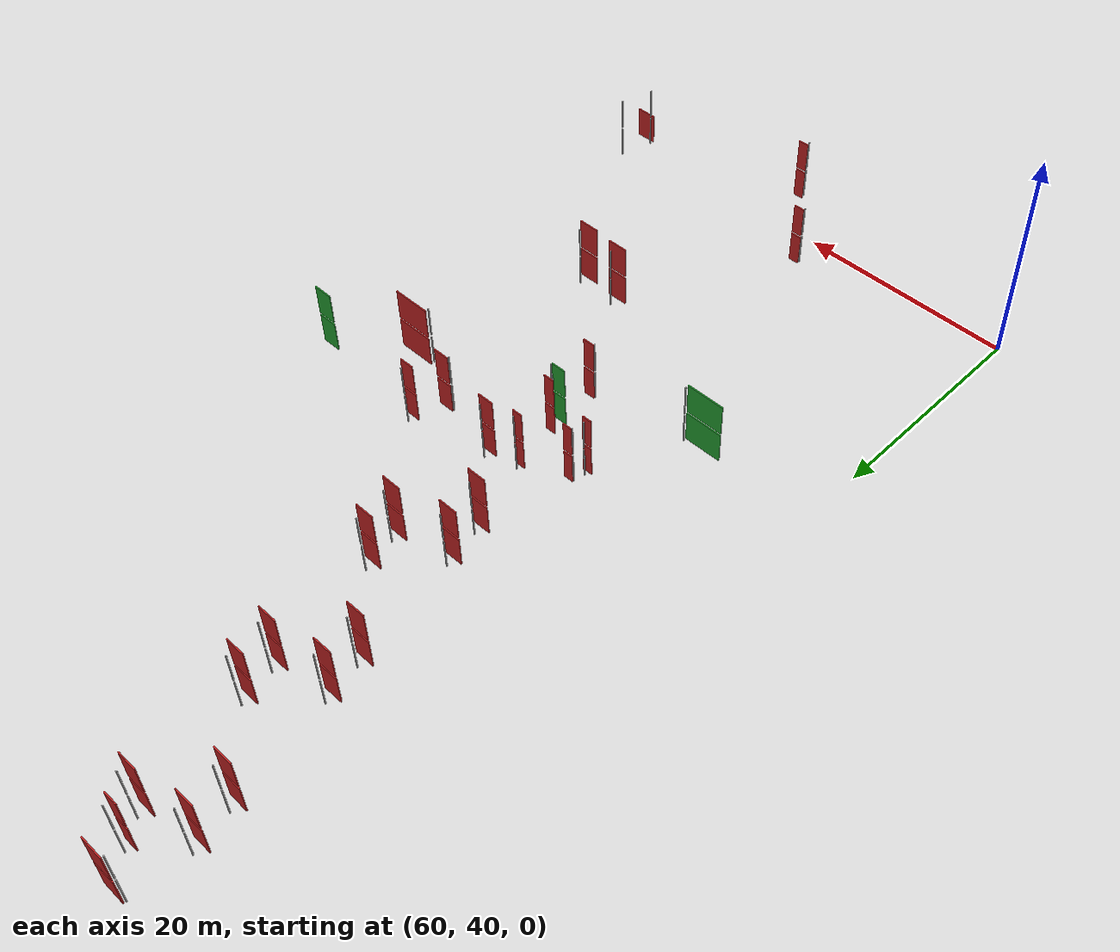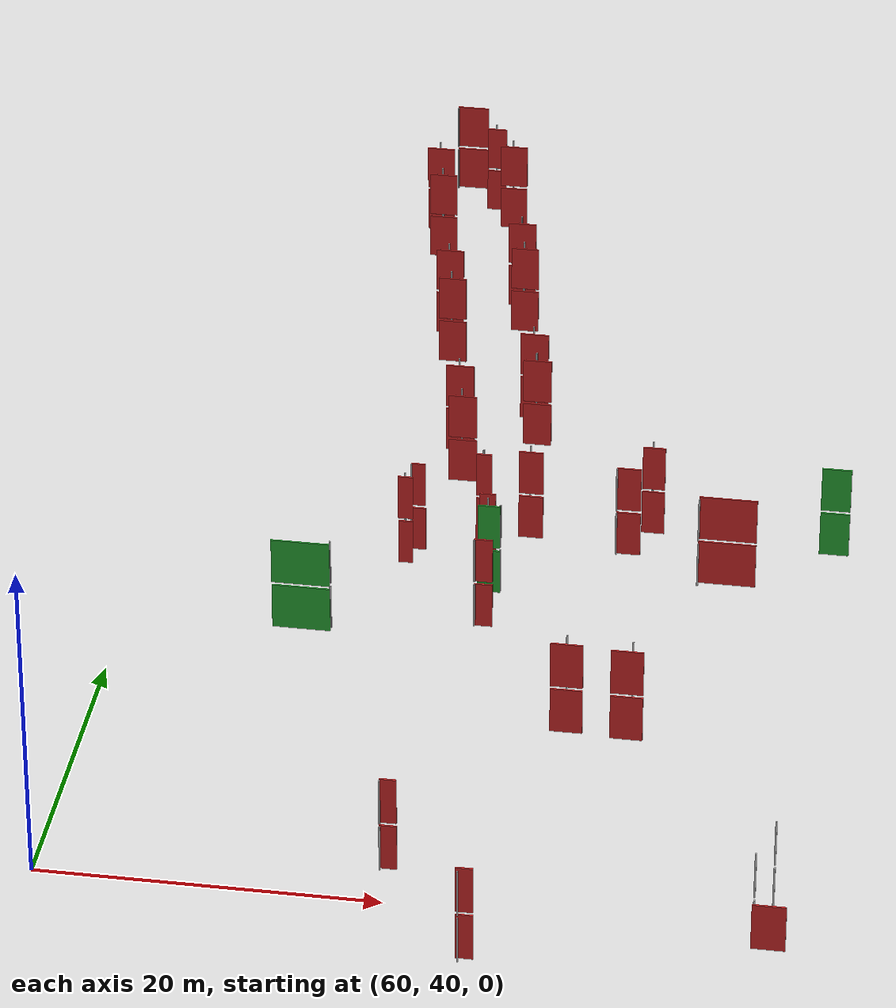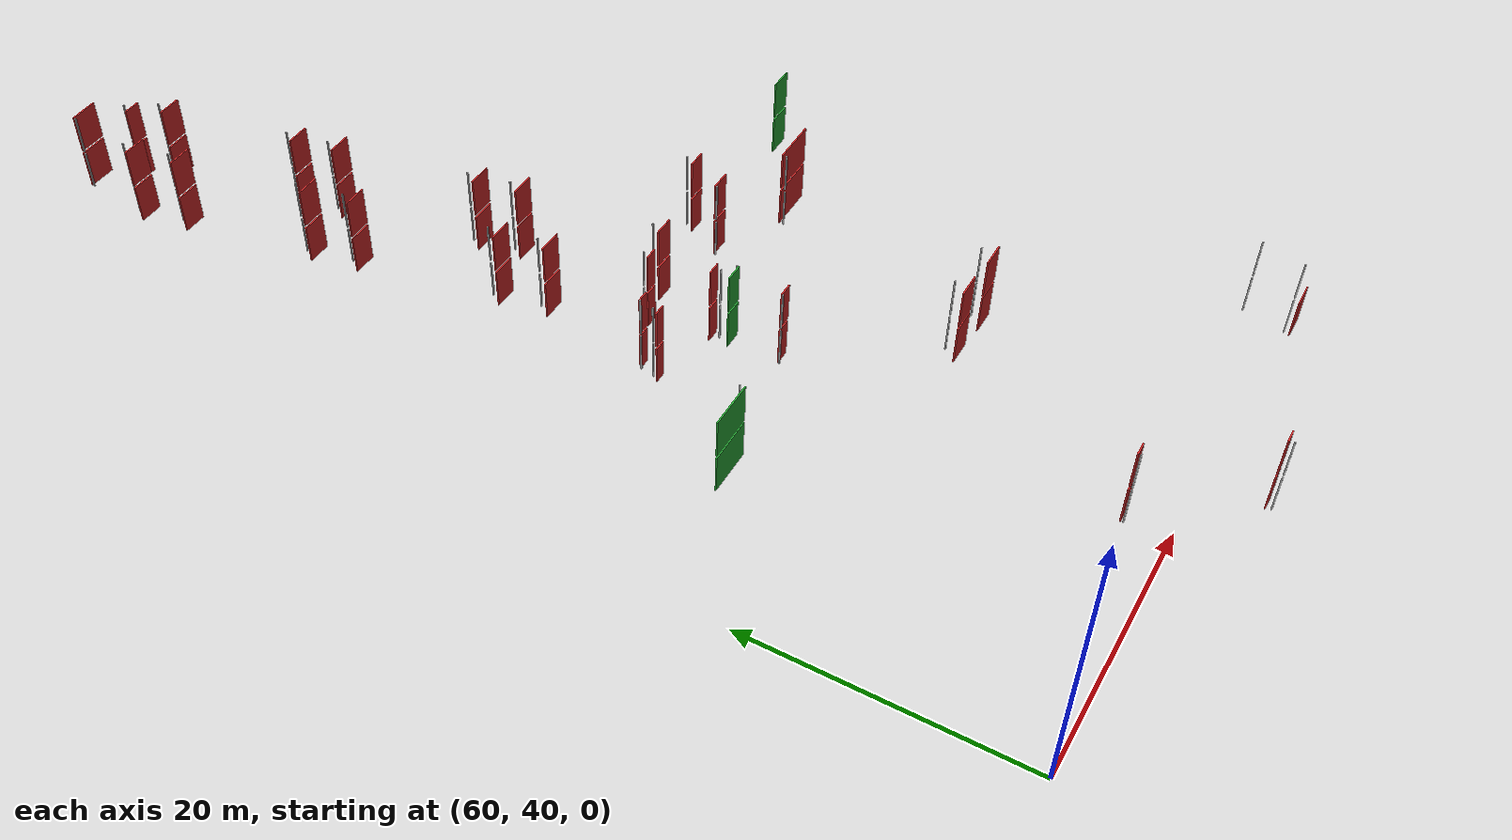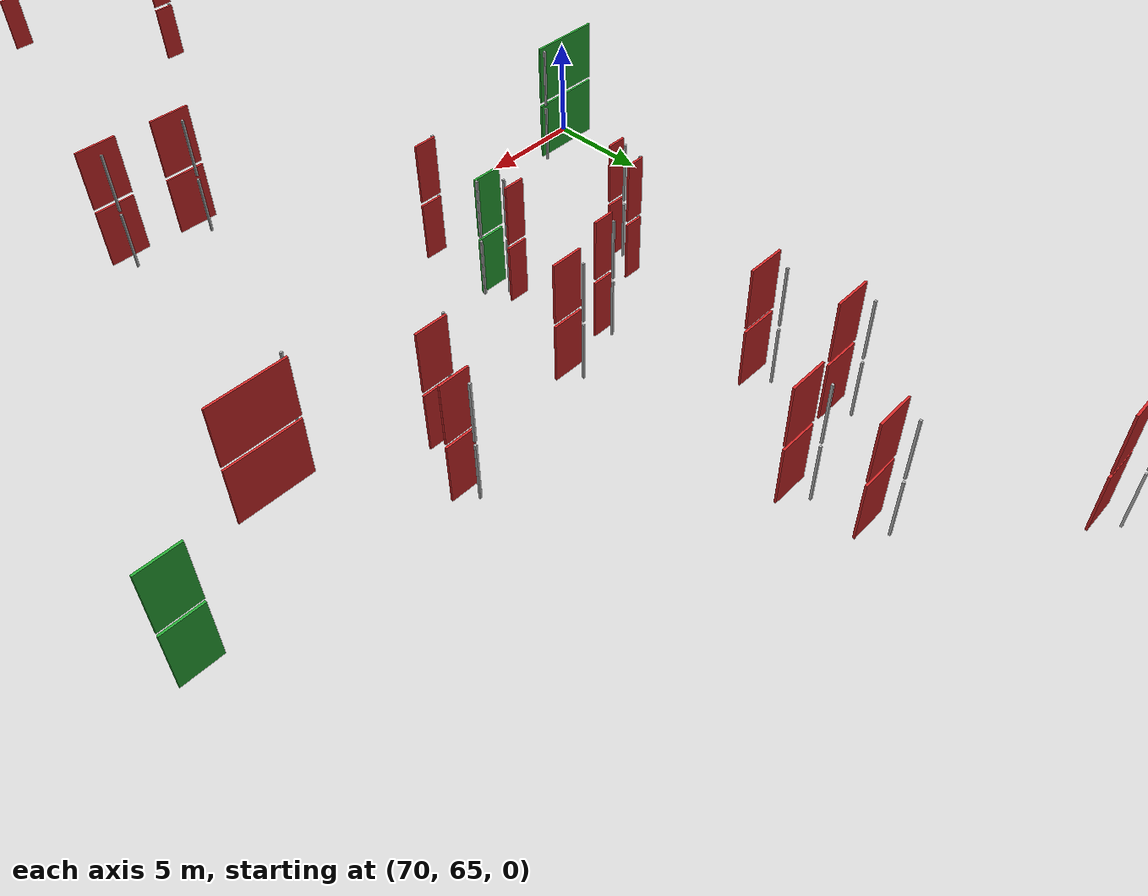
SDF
<sdf version="1.6">
 <world name="default">
  <model name="pivot_80.1_77.7_0.0">
   <static>true</static>
   <pose>80.09999999997672 77.70999999996275 1.5 0 0 0</pose>
   <link name="pivot_link">
    <visual name="pivot_visual"><geometry><box><size>0.1 0.1 3</size></box></geometry></visual>
   </link>
  </model>
  <model name="door_80.1_77.7_0.0">
   <static>false</static>
   <pose>80.19499999997788 77.22500000009313 1.5 0 0 0</pose>
   <link name="door_link">
    <gravity>false</gravity>
    <visual name="door_visual">
     <geometry><box><size>0.9884331031966657 0.1 3</size></box></geometry>
     <material>
      <script><uri>file://media/materials/scripts/gazebo.material</uri><name>Gazebo/Red</name></script>
     </material>
    </visual>
   </link>
  </model>
  <model name="door_102.6_78.7_0.0">
   <static>false</static>
   <pose>101.69999999983702 78.78000000002794 1.5 0 0 0</pose>
   <link name="door_link">
    <gravity>false</gravity>
    <visual name="door_visual">
     <geometry><box><size>1.808977612096451 0.1 3</size></box></geometry>
     <material>
      <script><uri>file://media/materials/scripts/gazebo.material</uri><name>Gazebo/Green</name></script>
     </material>
    </visual>
   </link>
  </model>
  <model name="pivot_71.5_115.4_0.0">
   <static>true</static>
   <pose>71.54999999998836 115.43000000016764 1.5 0 0 0</pose>
   <link name="pivot_link">
    <visual name="pivot_visual"><geometry><box><size>0.1 0.1 3</size></box></geometry></visual>
   </link>
  </model>
  <model name="door_71.5_115.4_0.0">
   <static>false</static>
   <pose>71.72999999998137 114.55000000004657 1.5 0 0 0</pose>
   <link name="door_link">
    <gravity>false</gravity>
    <visual name="door_visual">
     <geometry><box><size>1.796440926065282 0.1 3</size></box></geometry>
     <material>
      <script><uri>file://media/materials/scripts/gazebo.material</uri><name>Gazebo/Red</name></script>
     </material>
    </visual>
   </link>
  </model>
  <model name="pivot_72.3_111.9_0.0">
   <static>true</static>
   <pose>72.26000000000931 111.9199999999255 1.5 0 0 0</pose>
   <link name="pivot_link">
    <visual name="pivot_visual"><geometry><box><size>0.1 0.1 3</size></box></geometry></visual>
   </link>
  </model>
  <model name="door_72.3_111.9_0.0">
   <static>false</static>
   <pose>72.43499999999767 111.04000000003725 1.5 0 0 0</pose>
   <link name="door_link">
    <gravity>false</gravity>
    <visual name="door_visual">
     <geometry><box><size>1.7944637079631676 0.1 3</size></box></geometry>
     <material>
      <script><uri>file://media/materials/scripts/gazebo.material</uri><name>Gazebo/Red</name></script>
     </material>
    </visual>
   </link>
  </model>
  <model name="pivot_74.2_102.1_0.0">
   <static>true</static>
   <pose>74.20000000001164 102.14000000013039 1.5 0 0 0</pose>
   <link name="pivot_link">
    <visual name="pivot_visual"><geometry><box><size>0.1 0.1 3</size></box></geometry></visual>
   </link>
  </model>
  <model name="door_74.2_102.1_0.0">
   <static>false</static>
   <pose>74.38000000000466 101.26000000000931 1.5 0 0 0</pose>
   <link name="door_link">
    <gravity>false</gravity>
    <visual name="door_visual">
     <geometry><box><size>1.796440926065282 0.1 3</size></box></geometry>
     <material>
      <script><uri>file://media/materials/scripts/gazebo.material</uri><name>Gazebo/Red</name></script>
     </material>
    </visual>
   </link>
  </model>
  <model name="pivot_74.9_98.6_0.0">
   <static>true</static>
   <pose>74.90000000002328 98.62999999988824 1.5 0 0 0</pose>
   <link name="pivot_link">
    <visual name="pivot_visual"><geometry><box><size>0.1 0.1 3</size></box></geometry></visual>
   </link>
  </model>
  <model name="door_74.9_98.6_0.0">
   <static>false</static>
   <pose>75.0800000000163 97.75 1.5 0 0 0</pose>
   <link name="door_link">
    <gravity>false</gravity>
    <visual name="door_visual">
     <geometry><box><size>1.7964409256090668 0.1 3</size></box></geometry>
     <material>
      <script><uri>file://media/materials/scripts/gazebo.material</uri><name>Gazebo/Red</name></script>
     </material>
    </visual>
   </link>
  </model>
  <model name="pivot_77.0_88.1_0.0">
   <static>true</static>
   <pose>77.01000000000931 88.06999999983236 1.5 0 0 0</pose>
   <link name="pivot_link">
    <visual name="pivot_visual"><geometry><box><size>0.1 0.1 3</size></box></geometry></visual>
   </link>
  </model>
  <model name="door_77.0_88.1_0.0">
   <static>false</static>
   <pose>77.19000000000233 87.18999999994412 1.5 0 0 0</pose>
   <link name="door_link">
    <gravity>false</gravity>
    <visual name="door_visual">
     <geometry><box><size>1.7964409256090668 0.1 3</size></box></geometry>
     <material>
      <script><uri>file://media/materials/scripts/gazebo.material</uri><name>Gazebo/Red</name></script>
     </material>
    </visual>
   </link>
  </model>
  <model name="pivot_77.7_84.5_0.0">
   <static>true</static>
   <pose>77.71000000002095 84.54999999981374 1.5 0 0 0</pose>
   <link name="pivot_link">
    <visual name="pivot_visual"><geometry><box><size>0.1 0.1 3</size></box></geometry></visual>
   </link>
  </model>
  <model name="door_77.7_84.5_0.0">
   <static>false</static>
   <pose>77.88500000000931 83.6699999999255 1.5 0 0 0</pose>
   <link name="door_link">
    <gravity>false</gravity>
    <visual name="door_visual">
     <geometry><box><size>1.7944637079631676 0.1 3</size></box></geometry>
     <material>
      <script><uri>file://media/materials/scripts/gazebo.material</uri><name>Gazebo/Red</name></script>
     </material>
    </visual>
   </link>
  </model>
  <model name="pivot_76.0_75.5_0.0">
   <static>true</static>
   <pose>75.95000000001164 75.49000000022352 1.5 0 0 0</pose>
   <link name="pivot_link">
    <visual name="pivot_visual"><geometry><box><size>0.1 0.1 3</size></box></geometry></visual>
   </link>
  </model>
  <model name="door_76.0_75.5_0.0">
   <static>false</static>
   <pose>76.39000000001397 75.57500000018626 1.5 0 0 0</pose>
   <link name="door_link">
    <gravity>false</gravity>
    <visual name="door_visual">
     <geometry><box><size>0.8962700485807075 0.1 3</size></box></geometry>
     <material>
      <script><uri>file://media/materials/scripts/gazebo.material</uri><name>Gazebo/Red</name></script>
     </material>
    </visual>
   </link>
  </model>
  <model name="pivot_75.8_74.4_0.0">
   <static>true</static>
   <pose>75.75 74.43999999994412 1.5 0 0 0</pose>
   <link name="pivot_link">
    <visual name="pivot_visual"><geometry><box><size>0.1 0.1 3</size></box></geometry></visual>
   </link>
  </model>
  <model name="door_75.8_74.4_0.0">
   <static>false</static>
   <pose>75.83999999999651 74.0 1.5 0 0 0</pose>
   <link name="door_link">
    <gravity>false</gravity>
    <visual name="door_visual">
     <geometry><box><size>0.8982204628045334 0.1 3</size></box></geometry>
     <material>
      <script><uri>file://media/materials/scripts/gazebo.material</uri><name>Gazebo/Red</name></script>
     </material>
    </visual>
   </link>
  </model>
  <model name="pivot_78.4_106.3_0.0">
   <static>true</static>
   <pose>78.38000000000466 106.27000000001863 1.5 0 0 0</pose>
   <link name="pivot_link">
    <visual name="pivot_visual"><geometry><box><size>0.1 0.1 3</size></box></geometry></visual>
   </link>
  </model>
  <model name="door_78.4_106.3_0.0">
   <static>false</static>
   <pose>78.55999999999767 105.38999999989755 1.5 0 0 0</pose>
   <link name="door_link">
    <gravity>false</gravity>
    <visual name="door_visual">
     <geometry><box><size>1.796440926065282 0.1 3</size></box></geometry>
     <material>
      <script><uri>file://media/materials/scripts/gazebo.material</uri><name>Gazebo/Red</name></script>
     </material>
    </visual>
   </link>
  </model>
  <model name="pivot_76.4_116.4_0.0">
   <static>true</static>
   <pose>76.35999999998603 116.39000000013039 1.5 0 0 0</pose>
   <link name="pivot_link">
    <visual name="pivot_visual"><geometry><box><size>0.1 0.1 3</size></box></geometry></visual>
   </link>
  </model>
  <model name="door_76.4_116.4_0.0">
   <static>false</static>
   <pose>76.53999999997905 115.50500000012107 1.5 0 0 0</pose>
   <link name="door_link">
    <gravity>false</gravity>
    <visual name="door_visual">
     <geometry><box><size>1.8062391868343128 0.1 3</size></box></geometry>
     <material>
      <script><uri>file://media/materials/scripts/gazebo.material</uri><name>Gazebo/Red</name></script>
     </material>
    </visual>
   </link>
  </model>
  <model name="pivot_79.0_103.1_0.0">
   <static>true</static>
   <pose>79.01000000000931 103.08999999985099 1.5 0 0 0</pose>
   <link name="pivot_link">
    <visual name="pivot_visual"><geometry><box><size>0.1 0.1 3</size></box></geometry></visual>
   </link>
  </model>
  <model name="door_79.0_103.1_0.0">
   <static>false</static>
   <pose>79.18499999999767 102.20999999996275 1.5 0 0 0</pose>
   <link name="door_link">
    <gravity>false</gravity>
    <visual name="door_visual">
     <geometry><box><size>1.7944637079631676 0.1 3</size></box></geometry>
     <material>
      <script><uri>file://media/materials/scripts/gazebo.material</uri><name>Gazebo/Red</name></script>
     </material>
    </visual>
   </link>
  </model>
  <model name="pivot_81.1_92.5_0.0">
   <static>true</static>
   <pose>81.11999999999534 92.54000000003725 1.5 0 0 0</pose>
   <link name="pivot_link">
    <visual name="pivot_visual"><geometry><box><size>0.1 0.1 3</size></box></geometry></visual>
   </link>
  </model>
  <model name="door_81.1_92.5_0.0">
   <static>false</static>
   <pose>81.2949999999837 91.65999999991618 1.5 0 0 0</pose>
   <link name="door_link">
    <gravity>false</gravity>
    <visual name="door_visual">
     <geometry><box><size>1.7944637084198858 0.1 3</size></box></geometry>
     <material>
      <script><uri>file://media/materials/scripts/gazebo.material</uri><name>Gazebo/Red</name></script>
     </material>
    </visual>
   </link>
  </model>
  <model name="pivot_81.2_72.4_0.0">
   <static>true</static>
   <pose>81.15000000002328 72.43000000016764 1.5 0 0 0</pose>
   <link name="pivot_link">
    <visual name="pivot_visual"><geometry><box><size>0.1 0.1 3</size></box></geometry></visual>
   </link>
  </model>
  <model name="door_81.2_72.4_0.0">
   <static>false</static>
   <pose>81.05000000001746 72.92000000015832 1.5 0 0 0</pose>
   <link name="door_link">
    <gravity>false</gravity>
    <visual name="door_visual">
     <geometry><box><size>1.0001999799880765 0.1 3</size></box></geometry>
     <material>
      <script><uri>file://media/materials/scripts/gazebo.material</uri><name>Gazebo/Red</name></script>
     </material>
    </visual>
   </link>
  </model>
  <model name="pivot_81.0_67.8_0.0">
   <static>true</static>
   <pose>81.01000000000931 67.77999999979511 1.5 0 0 0</pose>
   <link name="pivot_link">
    <visual name="pivot_visual"><geometry><box><size>0.1 0.1 3</size></box></geometry></visual>
   </link>
  </model>
  <model name="door_81.0_67.8_0.0">
   <static>false</static>
   <pose>81.55000000001746 67.88999999989755 1.5 0 0 0</pose>
   <link name="door_link">
    <gravity>false</gravity>
    <visual name="door_visual">
     <geometry><box><size>1.1021796587332557 0.1 3</size></box></geometry>
     <material>
      <script><uri>file://media/materials/scripts/gazebo.material</uri><name>Gazebo/Red</name></script>
     </material>
    </visual>
   </link>
  </model>
  <model name="pivot_74.9_118.4_0.0">
   <static>true</static>
   <pose>74.94000000000233 118.39000000013039 1.5 0 0 0</pose>
   <link name="pivot_link">
    <visual name="pivot_visual"><geometry><box><size>0.1 0.1 3</size></box></geometry></visual>
   </link>
  </model>
  <model name="door_74.9_118.4_0.0">
   <static>false</static>
   <pose>75.06500000000233 117.75500000012107 1.5 0 0 0</pose>
   <link name="door_link">
    <gravity>false</gravity>
    <visual name="door_visual">
     <geometry><box><size>1.2943724348298333 0.1 3</size></box></geometry>
     <material>
      <script><uri>file://media/materials/scripts/gazebo.material</uri><name>Gazebo/Red</name></script>
     </material>
    </visual>
   </link>
  </model>
  <model name="pivot_79.4_43.0_0.0">
   <static>true</static>
   <pose>79.36999999999534 42.97999999998137 1.5 0 0 0</pose>
   <link name="pivot_link">
    <visual name="pivot_visual"><geometry><box><size>0.1 0.1 3</size></box></geometry></visual>
   </link>
  </model>
  <model name="door_79.4_43.0_0.0">
   <static>false</static>
   <pose>79.82500000001164 43.18500000005588 1.5 0 0 0</pose>
   <link name="door_link">
    <gravity>false</gravity>
    <visual name="door_visual">
     <geometry><box><size>0.9980981916532635 0.1 3</size></box></geometry>
     <material>
      <script><uri>file://media/materials/scripts/gazebo.material</uri><name>Gazebo/Red</name></script>
     </material>
    </visual>
   </link>
  </model>
  <model name="pivot_85.0_35.4_0.0">
   <static>true</static>
   <pose>84.95000000001164 35.39999999990687 1.5 0 0 0</pose>
   <link name="pivot_link">
    <visual name="pivot_visual"><geometry><box><size>0.1 0.1 3</size></box></geometry></visual>
   </link>
  </model>
  <model name="door_85.0_35.4_0.0">
   <static>false</static>
   <pose>85.27999999999884 35.77000000001863 1.5 0 0 0</pose>
   <link name="door_link">
    <gravity>false</gravity>
    <visual name="door_visual">
     <geometry><box><size>0.9915644206490059 0.1 3</size></box></geometry>
     <material>
      <script><uri>file://media/materials/scripts/gazebo.material</uri><name>Gazebo/Red</name></script>
     </material>
    </visual>
   </link>
  </model>
  <model name="pivot_101.6_42.6_0.0">
   <static>true</static>
   <pose>101.64000000001397 42.56999999983236 1.5 0 0 0</pose>
   <link name="pivot_link">
    <visual name="pivot_visual"><geometry><box><size>0.1 0.1 3</size></box></geometry></visual>
   </link>
  </model>
  <model name="pivot_100.8_39.5_0.0">
   <static>true</static>
   <pose>100.8300000000163 39.45999999996275 1.5 0 0 0</pose>
   <link name="pivot_link">
    <visual name="pivot_visual"><geometry><box><size>0.1 0.1 3</size></box></geometry></visual>
   </link>
  </model>
  <model name="door_100.8_39.5_0.0">
   <static>false</static>
   <pose>101.71000000002095 39.06499999994412 1.5 0 0 0</pose>
   <link name="door_link">
    <gravity>false</gravity>
    <visual name="door_visual">
     <geometry><box><size>1.9291708063548034 0.1 3</size></box></geometry>
     <material>
      <script><uri>file://media/materials/scripts/gazebo.material</uri><name>Gazebo/Red</name></script>
     </material>
    </visual>
   </link>
  </model>
  <model name="pivot_87.8_58.7_0.0">
   <static>true</static>
   <pose>87.82000000000698 58.72999999998137 1.5 0 0 0</pose>
   <link name="pivot_link">
    <visual name="pivot_visual"><geometry><box><size>0.1 0.1 3</size></box></geometry></visual>
   </link>
  </model>
  <model name="door_87.8_58.7_0.0">
   <static>false</static>
   <pose>87.93499999999767 57.77499999990687 1.5 0 0 0</pose>
   <link name="door_link">
    <gravity>false</gravity>
    <visual name="door_visual">
     <geometry><box><size>1.9237983263743257 0.1 3</size></box></geometry>
     <material>
      <script><uri>file://media/materials/scripts/gazebo.material</uri><name>Gazebo/Red</name></script>
     </material>
    </visual>
   </link>
  </model>
  <model name="pivot_91.7_58.5_0.0">
   <static>true</static>
   <pose>91.71000000002095 58.52999999979511 1.5 0 0 0</pose>
   <link name="pivot_link">
    <visual name="pivot_visual"><geometry><box><size>0.1 0.1 3</size></box></geometry></visual>
   </link>
  </model>
  <model name="door_91.7_58.5_0.0">
   <static>false</static>
   <pose>91.49500000002445 57.58999999985099 1.5 0 0 0</pose>
   <link name="door_link">
    <gravity>false</gravity>
    <visual name="door_visual">
     <geometry><box><size>1.9285486770039746 0.1 3</size></box></geometry>
     <material>
      <script><uri>file://media/materials/scripts/gazebo.material</uri><name>Gazebo/Red</name></script>
     </material>
    </visual>
   </link>
  </model>
  <model name="pivot_88.4_76.8_0.0">
   <static>true</static>
   <pose>88.44000000000233 76.79999999981374 1.5 0 0 0</pose>
   <link name="pivot_link">
    <visual name="pivot_visual"><geometry><box><size>0.1 0.1 3</size></box></geometry></visual>
   </link>
  </model>
  <model name="door_88.4_76.8_0.0">
   <static>false</static>
   <pose>89.17999999999302 76.94499999983236 1.5 0 0 0</pose>
   <link name="door_link">
    <gravity>false</gravity>
    <visual name="door_visual">
     <geometry><box><size>1.508144555394632 0.1 3</size></box></geometry>
     <material>
      <script><uri>file://media/materials/scripts/gazebo.material</uri><name>Gazebo/Red</name></script>
     </material>
    </visual>
   </link>
  </model>
  <model name="pivot_81.7_89.4_0.0">
   <static>true</static>
   <pose>81.73999999999069 89.4199999999255 1.5 0 0 0</pose>
   <link name="pivot_link">
    <visual name="pivot_visual"><geometry><box><size>0.1 0.1 3</size></box></geometry></visual>
   </link>
  </model>
  <model name="door_81.7_89.4_0.0">
   <static>false</static>
   <pose>81.91500000000815 88.53499999991618 1.5 0 0 0</pose>
   <link name="door_link">
    <gravity>false</gravity>
    <visual name="door_visual">
     <geometry><box><size>1.8042727066855455 0.1 3</size></box></geometry>
     <material>
      <script><uri>file://media/materials/scripts/gazebo.material</uri><name>Gazebo/Red</name></script>
     </material>
    </visual>
   </link>
  </model>
  <model name="pivot_82.9_78.6_0.0">
   <static>true</static>
   <pose>82.86999999999534 78.64000000013039 1.5 0 0 0</pose>
   <link name="pivot_link">
    <visual name="pivot_visual"><geometry><box><size>0.1 0.1 3</size></box></geometry></visual>
   </link>
  </model>
  <model name="door_82.9_78.6_0.0">
   <static>false</static>
   <pose>83.01999999998952 77.89500000001863 1.5 0 0 0</pose>
   <link name="door_link">
    <gravity>false</gravity>
    <visual name="door_visual">
     <geometry><box><size>1.51990131280261 0.1 3</size></box></geometry>
     <material>
      <script><uri>file://media/materials/scripts/gazebo.material</uri><name>Gazebo/Red</name></script>
     </material>
    </visual>
   </link>
  </model>
  <model name="pivot_82.0_71.7_0.0">
   <static>true</static>
   <pose>82.01000000000931 71.70999999996275 1.5 0 0 0</pose>
   <link name="pivot_link">
    <visual name="pivot_visual"><geometry><box><size>0.1 0.1 3</size></box></geometry></visual>
   </link>
  </model>
  <model name="door_82.0_71.7_0.0">
   <static>false</static>
   <pose>81.33499999996275 71.57499999995343 1.5 0 0 0</pose>
   <link name="door_link">
    <gravity>false</gravity>
    <visual name="door_visual">
     <geometry><box><size>1.3767352687650285 0.1 3</size></box></geometry>
     <material>
      <script><uri>file://media/materials/scripts/gazebo.material</uri><name>Gazebo/Green</name></script>
     </material>
    </visual>
   </link>
  </model>
  <model name="pivot_72.0_120.3_0.0">
   <static>true</static>
   <pose>72.01000000000931 120.29999999981374 1.5 0 0 0</pose>
   <link name="pivot_link">
    <visual name="pivot_visual"><geometry><box><size>0.1 0.1 3</size></box></geometry></visual>
   </link>
  </model>
  <model name="door_72.0_120.3_0.0">
   <static>false</static>
   <pose>73.04000000000815 120.50499999988824 1.5 0 0 0</pose>
   <link name="door_link">
    <gravity>false</gravity>
    <visual name="door_visual">
     <geometry><box><size>2.100404722931416 0.1 3</size></box></geometry>
     <material>
      <script><uri>file://media/materials/scripts/gazebo.material</uri><name>Gazebo/Red</name></script>
     </material>
    </visual>
   </link>
  </model>
  <model name="pivot_93.8_74.2_0.0">
   <static>true</static>
   <pose>93.78000000002794 74.1699999999255 1.5 0 0 0</pose>
   <link name="pivot_link">
    <visual name="pivot_visual"><geometry><box><size>0.1 0.1 3</size></box></geometry></visual>
   </link>
  </model>
  <model name="door_93.8_74.2_0.0">
   <static>false</static>
   <pose>95.51500000001397 74.51000000000931 1.5 0 0 0</pose>
   <link name="door_link">
    <gravity>false</gravity>
    <visual name="door_visual">
     <geometry><box><size>3.5360005656156344 0.1 3</size></box></geometry>
     <material>
      <script><uri>file://media/materials/scripts/gazebo.material</uri><name>Gazebo/Red</name></script>
     </material>
    </visual>
   </link>
  </model>
  <model name="pivot_72.5_66.3_0.0">
   <static>true</static>
   <pose>72.51000000000931 66.31000000005588 1.5 0 0 0</pose>
   <link name="pivot_link">
    <visual name="pivot_visual"><geometry><box><size>0.1 0.1 3</size></box></geometry></visual>
   </link>
  </model>
  <model name="door_72.5_66.3_0.0">
   <static>false</static>
   <pose>70.77499999990687 65.96500000008382 1.5 0 0 0</pose>
   <link name="door_link">
    <gravity>false</gravity>
    <visual name="door_visual">
     <geometry><box><size>3.5379372523187618 0.1 3</size></box></geometry>
     <material>
      <script><uri>file://media/materials/scripts/gazebo.material</uri><name>Gazebo/Green</name></script>
     </material>
    </visual>
   </link>
  </model>
  <model name="pivot_90.3_80.2_0.0">
   <static>true</static>
   <pose>90.27000000001863 80.20999999996275 1.5 0 0 0</pose>
   <link name="pivot_link">
    <visual name="pivot_visual"><geometry><box><size>0.1 0.1 3</size></box></geometry></visual>
   </link>
  </model>
  <model name="door_90.3_80.2_0.0">
   <static>false</static>
   <pose>90.41000000000349 79.52499999990687 1.5 0 0 0</pose>
   <link name="door_link">
    <gravity>false</gravity>
    <visual name="door_visual">
     <geometry><box><size>1.3983204211800917 0.1 3</size></box></geometry>
     <material>
      <script><uri>file://media/materials/scripts/gazebo.material</uri><name>Gazebo/Red</name></script>
     </material>
    </visual>
   </link>
  </model>
  <model name="pivot_80.1_77.7_3.2">
   <static>true</static>
   <pose>80.09999999997672 77.70999999996275 4.7 0 0 0</pose>
   <link name="pivot_link">
    <visual name="pivot_visual"><geometry><box><size>0.1 0.1 3</size></box></geometry></visual>
   </link>
  </model>
  <model name="door_80.1_77.7_3.2">
   <static>false</static>
   <pose>80.19499999997788 77.22500000009313 4.7 0 0 0</pose>
   <link name="door_link">
    <gravity>false</gravity>
    <visual name="door_visual">
     <geometry><box><size>0.9884331031966657 0.1 3</size></box></geometry>
     <material>
      <script><uri>file://media/materials/scripts/gazebo.material</uri><name>Gazebo/Red</name></script>
     </material>
    </visual>
   </link>
  </model>
  <model name="door_102.6_78.7_3.2">
   <static>false</static>
   <pose>101.69999999983702 78.78000000002794 4.7 0 0 0</pose>
   <link name="door_link">
    <gravity>false</gravity>
    <visual name="door_visual">
     <geometry><box><size>1.808977612096451 0.1 3</size></box></geometry>
     <material>
      <script><uri>file://media/materials/scripts/gazebo.material</uri><name>Gazebo/Green</name></script>
     </material>
    </visual>
   </link>
  </model>
  <model name="pivot_71.5_115.4_3.2">
   <static>true</static>
   <pose>71.54999999998836 115.43000000016764 4.7 0 0 0</pose>
   <link name="pivot_link">
    <visual name="pivot_visual"><geometry><box><size>0.1 0.1 3</size></box></geometry></visual>
   </link>
  </model>
  <model name="door_71.5_115.4_3.2">
   <static>false</static>
   <pose>71.72999999998137 114.55000000004657 4.7 0 0 0</pose>
   <link name="door_link">
    <gravity>false</gravity>
    <visual name="door_visual">
     <geometry><box><size>1.796440926065282 0.1 3</size></box></geometry>
     <material>
      <script><uri>file://media/materials/scripts/gazebo.material</uri><name>Gazebo/Red</name></script>
     </material>
    </visual>
   </link>
  </model>
  <model name="pivot_72.3_111.9_3.2">
   <static>true</static>
   <pose>72.26000000000931 111.9199999999255 4.7 0 0 0</pose>
   <link name="pivot_link">
    <visual name="pivot_visual"><geometry><box><size>0.1 0.1 3</size></box></geometry></visual>
   </link>
  </model>
  <model name="door_72.3_111.9_3.2">
   <static>false</static>
   <pose>72.43499999999767 111.04000000003725 4.7 0 0 0</pose>
   <link name="door_link">
    <gravity>false</gravity>
    <visual name="door_visual">
     <geometry><box><size>1.7944637079631676 0.1 3</size></box></geometry>
     <material>
      <script><uri>file://media/materials/scripts/gazebo.material</uri><name>Gazebo/Red</name></script>
     </material>
    </visual>
   </link>
  </model>
  <model name="pivot_74.2_102.1_3.2">
   <static>true</static>
   <pose>74.20000000001164 102.14000000013039 4.7 0 0 0</pose>
   <link name="pivot_link">
    <visual name="pivot_visual"><geometry><box><size>0.1 0.1 3</size></box></geometry></visual>
   </link>
  </model>
  <model name="door_74.2_102.1_3.2">
   <static>false</static>
   <pose>74.38000000000466 101.26000000000931 4.7 0 0 0</pose>
   <link name="door_link">
    <gravity>false</gravity>
    <visual name="door_visual">
     <geometry><box><size>1.796440926065282 0.1 3</size></box></geometry>
     <material>
      <script><uri>file://media/materials/scripts/gazebo.material</uri><name>Gazebo/Red</name></script>
     </material>
    </visual>
   </link>
  </model>
  <model name="pivot_74.9_98.6_3.2">
   <static>true</static>
   <pose>74.90000000002328 98.62999999988824 4.7 0 0 0</pose>
   <link name="pivot_link">
    <visual name="pivot_visual"><geometry><box><size>0.1 0.1 3</size></box></geometry></visual>
   </link>
  </model>
  <model name="door_74.9_98.6_3.2">
   <static>false</static>
   <pose>75.0800000000163 97.75 4.7 0 0 0</pose>
   <link name="door_link">
    <gravity>false</gravity>
    <visual name="door_visual">
     <geometry><box><size>1.7964409256090668 0.1 3</size></box></geometry>
     <material>
      <script><uri>file://media/materials/scripts/gazebo.material</uri><name>Gazebo/Red</name></script>
     </material>
    </visual>
   </link>
  </model>
  <model name="pivot_77.0_88.1_3.2">
   <static>true</static>
   <pose>77.01000000000931 88.06999999983236 4.7 0 0 0</pose>
   <link name="pivot_link">
    <visual name="pivot_visual"><geometry><box><size>0.1 0.1 3</size></box></geometry></visual>
   </link>
  </model>
  <model name="door_77.0_88.1_3.2">
   <static>false</static>
   <pose>77.19000000000233 87.18999999994412 4.7 0 0 0</pose>
   <link name="door_link">
    <gravity>false</gravity>
    <visual name="door_visual">
     <geometry><box><size>1.7964409256090668 0.1 3</size></box></geometry>
     <material>
      <script><uri>file://media/materials/scripts/gazebo.material</uri><name>Gazebo/Red</name></script>
     </material>
    </visual>
   </link>
  </model>
  <model name="pivot_77.7_84.5_3.2">
   <static>true</static>
   <pose>77.71000000002095 84.54999999981374 4.7 0 0 0</pose>
   <link name="pivot_link">
    <visual name="pivot_visual"><geometry><box><size>0.1 0.1 3</size></box></geometry></visual>
   </link>
  </model>
  <model name="door_77.7_84.5_3.2">
   <static>false</static>
   <pose>77.88500000000931 83.6699999999255 4.7 0 0 0</pose>
   <link name="door_link">
    <gravity>false</gravity>
    <visual name="door_visual">
     <geometry><box><size>1.7944637079631676 0.1 3</size></box></geometry>
     <material>
      <script><uri>file://media/materials/scripts/gazebo.material</uri><name>Gazebo/Red</name></script>
     </material>
    </visual>
   </link>
  </model>
  <model name="pivot_76.0_75.5_3.2">
   <static>true</static>
   <pose>75.95000000001164 75.49000000022352 4.7 0 0 0</pose>
   <link name="pivot_link">
    <visual name="pivot_visual"><geometry><box><size>0.1 0.1 3</size></box></geometry></visual>
   </link>
  </model>
  <model name="door_76.0_75.5_3.2">
   <static>false</static>
   <pose>76.39000000001397 75.57500000018626 4.7 0 0 0</pose>
   <link name="door_link">
    <gravity>false</gravity>
    <visual name="door_visual">
     <geometry><box><size>0.8962700485807075 0.1 3</size></box></geometry>
     <material>
      <script><uri>file://media/materials/scripts/gazebo.material</uri><name>Gazebo/Red</name></script>
     </material>
    </visual>
   </link>
  </model>
  <model name="pivot_75.8_74.4_3.2">
   <static>true</static>
   <pose>75.75 74.43999999994412 4.7 0 0 0</pose>
   <link name="pivot_link">
    <visual name="pivot_visual"><geometry><box><size>0.1 0.1 3</size></box></geometry></visual>
   </link>
  </model>
  <model name="door_75.8_74.4_3.2">
   <static>false</static>
   <pose>75.83999999999651 74.0 4.7 0 0 0</pose>
   <link name="door_link">
    <gravity>false</gravity>
    <visual name="door_visual">
     <geometry><box><size>0.8982204628045334 0.1 3</size></box></geometry>
     <material>
      <script><uri>file://media/materials/scripts/gazebo.material</uri><name>Gazebo/Red</name></script>
     </material>
    </visual>
   </link>
  </model>
  <model name="pivot_78.4_106.3_3.2">
   <static>true</static>
   <pose>78.38000000000466 106.27000000001863 4.7 0 0 0</pose>
   <link name="pivot_link">
    <visual name="pivot_visual"><geometry><box><size>0.1 0.1 3</size></box></geometry></visual>
   </link>
  </model>
  <model name="door_78.4_106.3_3.2">
   <static>false</static>
   <pose>78.55999999999767 105.38999999989755 4.7 0 0 0</pose>
   <link name="door_link">
    <gravity>false</gravity>
    <visual name="door_visual">
     <geometry><box><size>1.796440926065282 0.1 3</size></box></geometry>
     <material>
      <script><uri>file://media/materials/scripts/gazebo.material</uri><name>Gazebo/Red</name></script>
     </material>
    </visual>
   </link>
  </model>
  <model name="pivot_76.4_116.4_3.2">
   <static>true</static>
   <pose>76.35999999998603 116.39000000013039 4.7 0 0 0</pose>
   <link name="pivot_link">
    <visual name="pivot_visual"><geometry><box><size>0.1 0.1 3</size></box></geometry></visual>
   </link>
  </model>
  <model name="door_76.4_116.4_3.2">
   <static>false</static>
   <pose>76.53999999997905 115.50500000012107 4.7 0 0 0</pose>
   <link name="door_link">
    <gravity>false</gravity>
    <visual name="door_visual">
     <geometry><box><size>1.8062391868343128 0.1 3</size></box></geometry>
     <material>
      <script><uri>file://media/materials/scripts/gazebo.material</uri><name>Gazebo/Red</name></script>
     </material>
    </visual>
   </link>
  </model>
  <model name="pivot_79.0_103.1_3.2">
   <static>true</static>
   <pose>79.01000000000931 103.08999999985099 4.7 0 0 0</pose>
   <link name="pivot_link">
    <visual name="pivot_visual"><geometry><box><size>0.1 0.1 3</size></box></geometry></visual>
   </link>
  </model>
  <model name="door_79.0_103.1_3.2">
   <static>false</static>
   <pose>79.18499999999767 102.20999999996275 4.7 0 0 0</pose>
   <link name="door_link">
    <gravity>false</gravity>
    <visual name="door_visual">
     <geometry><box><size>1.7944637079631676 0.1 3</size></box></geometry>
     <material>
      <script><uri>file://media/materials/scripts/gazebo.material</uri><name>Gazebo/Red</name></script>
     </material>
    </visual>
   </link>
  </model>
  <model name="pivot_81.1_92.5_3.2">
   <static>true</static>
   <pose>81.11999999999534 92.54000000003725 4.7 0 0 0</pose>
   <link name="pivot_link">
    <visual name="pivot_visual"><geometry><box><size>0.1 0.1 3</size></box></geometry></visual>
   </link>
  </model>
  <model name="door_81.1_92.5_3.2">
   <static>false</static>
   <pose>81.2949999999837 91.65999999991618 4.7 0 0 0</pose>
   <link name="door_link">
    <gravity>false</gravity>
    <visual name="door_visual">
     <geometry><box><size>1.7944637084198858 0.1 3</size></box></geometry>
     <material>
      <script><uri>file://media/materials/scripts/gazebo.material</uri><name>Gazebo/Red</name></script>
     </material>
    </visual>
   </link>
  </model>
  <model name="pivot_81.2_72.4_3.2">
   <static>true</static>
   <pose>81.15000000002328 72.43000000016764 4.7 0 0 0</pose>
   <link name="pivot_link">
    <visual name="pivot_visual"><geometry><box><size>0.1 0.1 3</size></box></geometry></visual>
   </link>
  </model>
  <model name="door_81.2_72.4_3.2">
   <static>false</static>
   <pose>81.05000000001746 72.92000000015832 4.7 0 0 0</pose>
   <link name="door_link">
    <gravity>false</gravity>
    <visual name="door_visual">
     <geometry><box><size>1.0001999799880765 0.1 3</size></box></geometry>
     <material>
      <script><uri>file://media/materials/scripts/gazebo.material</uri><name>Gazebo/Red</name></script>
     </material>
    </visual>
   </link>
  </model>
  <model name="pivot_81.0_67.8_3.2">
   <static>true</static>
   <pose>81.01000000000931 67.77999999979511 4.7 0 0 0</pose>
   <link name="pivot_link">
    <visual name="pivot_visual"><geometry><box><size>0.1 0.1 3</size></box></geometry></visual>
   </link>
  </model>
  <model name="door_81.0_67.8_3.2">
   <static>false</static>
   <pose>81.55000000001746 67.88999999989755 4.7 0 0 0</pose>
   <link name="door_link">
    <gravity>false</gravity>
    <visual name="door_visual">
     <geometry><box><size>1.1021796587332557 0.1 3</size></box></geometry>
     <material>
      <script><uri>file://media/materials/scripts/gazebo.material</uri><name>Gazebo/Red</name></script>
     </material>
    </visual>
   </link>
  </model>
  <model name="pivot_74.9_118.4_3.2">
   <static>true</static>
   <pose>74.94000000000233 118.39000000013039 4.7 0 0 0</pose>
   <link name="pivot_link">
    <visual name="pivot_visual"><geometry><box><size>0.1 0.1 3</size></box></geometry></visual>
   </link>
  </model>
  <model name="door_74.9_118.4_3.2">
   <static>false</static>
   <pose>75.06500000000233 117.75500000012107 4.7 0 0 0</pose>
   <link name="door_link">
    <gravity>false</gravity>
    <visual name="door_visual">
     <geometry><box><size>1.2943724348298333 0.1 3</size></box></geometry>
     <material>
      <script><uri>file://media/materials/scripts/gazebo.material</uri><name>Gazebo/Red</name></script>
     </material>
    </visual>
   </link>
  </model>
  <model name="pivot_79.4_43.0_3.2">
   <static>true</static>
   <pose>79.36999999999534 42.97999999998137 4.7 0 0 0</pose>
   <link name="pivot_link">
    <visual name="pivot_visual"><geometry><box><size>0.1 0.1 3</size></box></geometry></visual>
   </link>
  </model>
  <model name="door_79.4_43.0_3.2">
   <static>false</static>
   <pose>79.82500000001164 43.18500000005588 4.7 0 0 0</pose>
   <link name="door_link">
    <gravity>false</gravity>
    <visual name="door_visual">
     <geometry><box><size>0.9980981916532635 0.1 3</size></box></geometry>
     <material>
      <script><uri>file://media/materials/scripts/gazebo.material</uri><name>Gazebo/Red</name></script>
     </material>
    </visual>
   </link>
  </model>
  <model name="pivot_85.0_35.4_3.2">
   <static>true</static>
   <pose>84.95000000001164 35.39999999990687 4.7 0 0 0</pose>
   <link name="pivot_link">
    <visual name="pivot_visual"><geometry><box><size>0.1 0.1 3</size></box></geometry></visual>
   </link>
  </model>
  <model name="door_85.0_35.4_3.2">
   <static>false</static>
   <pose>85.27999999999884 35.77000000001863 4.7 0 0 0</pose>
   <link name="door_link">
    <gravity>false</gravity>
    <visual name="door_visual">
     <geometry><box><size>0.9915644206490059 0.1 3</size></box></geometry>
     <material>
      <script><uri>file://media/materials/scripts/gazebo.material</uri><name>Gazebo/Red</name></script>
     </material>
    </visual>
   </link>
  </model>
  <model name="pivot_101.6_42.6_3.2">
   <static>true</static>
   <pose>101.64000000001397 42.56999999983236 4.7 0 0 0</pose>
   <link name="pivot_link">
    <visual name="pivot_visual"><geometry><box><size>0.1 0.1 3</size></box></geometry></visual>
   </link>
  </model>
  <model name="pivot_100.8_39.5_3.2">
   <static>true</static>
   <pose>100.8300000000163 39.45999999996275 4.7 0 0 0</pose>
   <link name="pivot_link">
    <visual name="pivot_visual"><geometry><box><size>0.1 0.1 3</size></box></geometry></visual>
   </link>
  </model>
  <model name="pivot_87.8_58.7_3.2">
   <static>true</static>
   <pose>87.82000000000698 58.72999999998137 4.7 0 0 0</pose>
   <link name="pivot_link">
    <visual name="pivot_visual"><geometry><box><size>0.1 0.1 3</size></box></geometry></visual>
   </link>
  </model>
  <model name="door_87.8_58.7_3.2">
   <static>false</static>
   <pose>87.93499999999767 57.77499999990687 4.7 0 0 0</pose>
   <link name="door_link">
    <gravity>false</gravity>
    <visual name="door_visual">
     <geometry><box><size>1.9237983263743257 0.1 3</size></box></geometry>
     <material>
      <script><uri>file://media/materials/scripts/gazebo.material</uri><name>Gazebo/Red</name></script>
     </material>
    </visual>
   </link>
  </model>
  <model name="pivot_91.7_58.5_3.2">
   <static>true</static>
   <pose>91.71000000002095 58.52999999979511 4.7 0 0 0</pose>
   <link name="pivot_link">
    <visual name="pivot_visual"><geometry><box><size>0.1 0.1 3</size></box></geometry></visual>
   </link>
  </model>
  <model name="door_91.7_58.5_3.2">
   <static>false</static>
   <pose>91.49500000002445 57.58999999985099 4.7 0 0 0</pose>
   <link name="door_link">
    <gravity>false</gravity>
    <visual name="door_visual">
     <geometry><box><size>1.9285486770039746 0.1 3</size></box></geometry>
     <material>
      <script><uri>file://media/materials/scripts/gazebo.material</uri><name>Gazebo/Red</name></script>
     </material>
    </visual>
   </link>
  </model>
  <model name="pivot_88.4_76.8_3.2">
   <static>true</static>
   <pose>88.44000000000233 76.79999999981374 4.7 0 0 0</pose>
   <link name="pivot_link">
    <visual name="pivot_visual"><geometry><box><size>0.1 0.1 3</size></box></geometry></visual>
   </link>
  </model>
  <model name="door_88.4_76.8_3.2">
   <static>false</static>
   <pose>89.17999999999302 76.94499999983236 4.7 0 0 0</pose>
   <link name="door_link">
    <gravity>false</gravity>
    <visual name="door_visual">
     <geometry><box><size>1.508144555394632 0.1 3</size></box></geometry>
     <material>
      <script><uri>file://media/materials/scripts/gazebo.material</uri><name>Gazebo/Red</name></script>
     </material>
    </visual>
   </link>
  </model>
  <model name="pivot_81.7_89.4_3.2">
   <static>true</static>
   <pose>81.73999999999069 89.4199999999255 4.7 0 0 0</pose>
   <link name="pivot_link">
    <visual name="pivot_visual"><geometry><box><size>0.1 0.1 3</size></box></geometry></visual>
   </link>
  </model>
  <model name="door_81.7_89.4_3.2">
   <static>false</static>
   <pose>81.91500000000815 88.53499999991618 4.7 0 0 0</pose>
   <link name="door_link">
    <gravity>false</gravity>
    <visual name="door_visual">
     <geometry><box><size>1.8042727066855455 0.1 3</size></box></geometry>
     <material>
      <script><uri>file://media/materials/scripts/gazebo.material</uri><name>Gazebo/Red</name></script>
     </material>
    </visual>
   </link>
  </model>
  <model name="pivot_82.9_78.6_3.2">
   <static>true</static>
   <pose>82.86999999999534 78.64000000013039 4.7 0 0 0</pose>
   <link name="pivot_link">
    <visual name="pivot_visual"><geometry><box><size>0.1 0.1 3</size></box></geometry></visual>
   </link>
  </model>
  <model name="door_82.9_78.6_3.2">
   <static>false</static>
   <pose>83.01999999998952 77.89500000001863 4.7 0 0 0</pose>
   <link name="door_link">
    <gravity>false</gravity>
    <visual name="door_visual">
     <geometry><box><size>1.51990131280261 0.1 3</size></box></geometry>
     <material>
      <script><uri>file://media/materials/scripts/gazebo.material</uri><name>Gazebo/Red</name></script>
     </material>
    </visual>
   </link>
  </model>
  <model name="pivot_82.0_71.7_3.2">
   <static>true</static>
   <pose>82.01000000000931 71.70999999996275 4.7 0 0 0</pose>
   <link name="pivot_link">
    <visual name="pivot_visual"><geometry><box><size>0.1 0.1 3</size></box></geometry></visual>
   </link>
  </model>
  <model name="door_82.0_71.7_3.2">
   <static>false</static>
   <pose>81.33499999996275 71.57499999995343 4.7 0 0 0</pose>
   <link name="door_link">
    <gravity>false</gravity>
    <visual name="door_visual">
     <geometry><box><size>1.3767352687650285 0.1 3</size></box></geometry>
     <material>
      <script><uri>file://media/materials/scripts/gazebo.material</uri><name>Gazebo/Green</name></script>
     </material>
    </visual>
   </link>
  </model>
  <model name="pivot_72.0_120.3_3.2">
   <static>true</static>
   <pose>72.01000000000931 120.29999999981374 4.7 0 0 0</pose>
   <link name="pivot_link">
    <visual name="pivot_visual"><geometry><box><size>0.1 0.1 3</size></box></geometry></visual>
   </link>
  </model>
  <model name="door_72.0_120.3_3.2">
   <static>false</static>
   <pose>73.04000000000815 120.50499999988824 4.7 0 0 0</pose>
   <link name="door_link">
    <gravity>false</gravity>
    <visual name="door_visual">
     <geometry><box><size>2.100404722931416 0.1 3</size></box></geometry>
     <material>
      <script><uri>file://media/materials/scripts/gazebo.material</uri><name>Gazebo/Red</name></script>
     </material>
    </visual>
   </link>
  </model>
  <model name="pivot_93.8_74.2_3.2">
   <static>true</static>
   <pose>93.78000000002794 74.1699999999255 4.7 0 0 0</pose>
   <link name="pivot_link">
    <visual name="pivot_visual"><geometry><box><size>0.1 0.1 3</size></box></geometry></visual>
   </link>
  </model>
  <model name="door_93.8_74.2_3.2">
   <static>false</static>
   <pose>95.51500000001397 74.51000000000931 4.7 0 0 0</pose>
   <link name="door_link">
    <gravity>false</gravity>
    <visual name="door_visual">
     <geometry><box><size>3.5360005656156344 0.1 3</size></box></geometry>
     <material>
      <script><uri>file://media/materials/scripts/gazebo.material</uri><name>Gazebo/Red</name></script>
     </material>
    </visual>
   </link>
  </model>
  <model name="pivot_72.5_66.3_3.2">
   <static>true</static>
   <pose>72.51000000000931 66.31000000005588 4.7 0 0 0</pose>
   <link name="pivot_link">
    <visual name="pivot_visual"><geometry><box><size>0.1 0.1 3</size></box></geometry></visual>
   </link>
  </model>
  <model name="door_72.5_66.3_3.2">
   <static>false</static>
   <pose>70.77499999990687 65.96500000008382 4.7 0 0 0</pose>
   <link name="door_link">
    <gravity>false</gravity>
    <visual name="door_visual">
     <geometry><box><size>3.5379372523187618 0.1 3</size></box></geometry>
     <material>
      <script><uri>file://media/materials/scripts/gazebo.material</uri><name>Gazebo/Green</name></script>
     </material>
    </visual>
   </link>
  </model>
  <model name="pivot_90.3_80.2_3.2">
   <static>true</static>
   <pose>90.27000000001863 80.20999999996275 4.7 0 0 0</pose>
   <link name="pivot_link">
    <visual name="pivot_visual"><geometry><box><size>0.1 0.1 3</size></box></geometry></visual>
   </link>
  </model>
  <model name="door_90.3_80.2_3.2">
   <static>false</static>
   <pose>90.41000000000349 79.52499999990687 4.7 0 0 0</pose>
   <link name="door_link">
    <gravity>false</gravity>
    <visual name="door_visual">
     <geometry><box><size>1.3983204211800917 0.1 3</size></box></geometry>
     <material>
      <script><uri>file://media/materials/scripts/gazebo.material</uri><name>Gazebo/Red</name></script>
     </material>
    </visual>
   </link>
  </model>
 </world>
</sdf>
